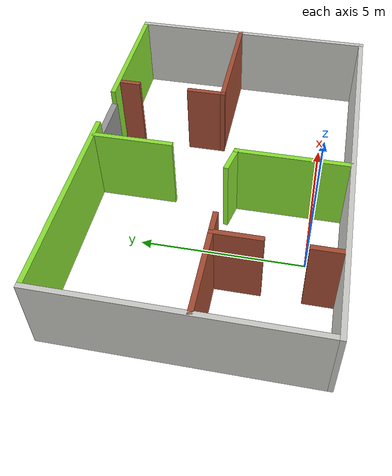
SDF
<?xml version='1.0'?>
<sdf version='1.6'>
  <model name='new_home'>
    <pose frame=''>2.21837 2.935 0 0 -0 0</pose>
    <link name='Door_1'>
      <collision name='Door_1_Collision'>
        <geometry>
          <box>
            <size>1.4852 0.2 2</size>
          </box>
        </geometry>
        <pose frame=''>0 0 1 0 -0 0</pose>
      </collision>
      <visual name='Door_1_Visual'>
        <pose frame=''>0 0 1 0 -0 0</pose>
        <geometry>
          <box>
            <size>1.4852 0.2 2</size>
          </box>
        </geometry>
        <material>
          <script>
            <uri>file://media/materials/scripts/gazebo.material</uri>
            <name>Gazebo/Grey</name>
          </script>
        </material>
      </visual>
      <pose frame=''>1.00458 3.92529 0 0 -0 0</pose>
    </link>
    <link name='Wall_0'>
      <collision name='Wall_0_Collision'>
        <geometry>
          <box>
            <size>8 0.15 2.5</size>
          </box>
        </geometry>
        <pose frame=''>0 0 1.25 0 -0 0</pose>
      </collision>
      <visual name='Wall_0_Visual'>
        <pose frame=''>0 0 1.25 0 -0 0</pose>
        <geometry>
          <box>
            <size>8 0.15 2.5</size>
          </box>
        </geometry>
        <material>
          <script>
            <uri>file://media/materials/scripts/gazebo.material</uri>
            <name>Gazebo/CeilingTiled</name>
          </script>
          <ambient>0.541176 0.886275 0.203922 1</ambient>
        </material>
        <meta>
          <layer>0</layer>
        </meta>
      </visual>
      <pose frame=''>-5.92837 0 0 0 -0 1.5708</pose>
    </link>
    <link name='Wall_14'>
      <collision name='Wall_14_Collision'>
        <geometry>
          <box>
            <size>3.75 0.15 2.5</size>
          </box>
        </geometry>
        <pose frame=''>0 0 1.25 0 -0 0</pose>
      </collision>
      <visual name='Wall_14_Visual'>
        <pose frame=''>0 0 1.25 0 -0 0</pose>
        <geometry>
          <box>
            <size>3.75 0.15 2.5</size>
          </box>
        </geometry>
        <material>
          <script>
            <uri>file://media/materials/scripts/gazebo.material</uri>
            <name>Gazebo/Bricks</name>
          </script>
          <ambient>1 1 1 1</ambient>
        </material>
        <meta>
          <layer>0</layer>
        </meta>
      </visual>
      <pose frame=''>4.12837 0.395188 0 0 -0 3.14159</pose>
    </link>
    <link name='Wall_15'>
      <collision name='Wall_15_Collision'>
        <geometry>
          <box>
            <size>1.25 0.15 2.5</size>
          </box>
        </geometry>
        <pose frame=''>0 0 1.25 0 -0 0</pose>
      </collision>
      <visual name='Wall_15_Visual'>
        <pose frame=''>0 0 1.25 0 -0 0</pose>
        <geometry>
          <box>
            <size>1.25 0.15 2.5</size>
          </box>
        </geometry>
        <material>
          <script>
            <uri>file://media/materials/scripts/gazebo.material</uri>
            <name>Gazebo/Bricks</name>
          </script>
          <ambient>1 1 1 1</ambient>
        </material>
        <meta>
          <layer>0</layer>
        </meta>
      </visual>
      <pose frame=''>2.32837 0.945188 0 0 -0 1.5708</pose>
    </link>
    <link name='Wall_17'>
      <collision name='Wall_17_Collision'>
        <geometry>
          <box>
            <size>2.5 0.15 2.5</size>
          </box>
        </geometry>
        <pose frame=''>0 0 1.25 0 -0 0</pose>
      </collision>
      <visual name='Wall_17_Visual'>
        <pose frame=''>0 0 1.25 0 -0 0</pose>
        <geometry>
          <box>
            <size>2.5 0.15 2.5</size>
          </box>
        </geometry>
        <material>
          <script>
            <uri>file://media/materials/scripts/gazebo.material</uri>
            <name>Gazebo/Grey</name>
          </script>
          <ambient>0.541176 0.886275 0.203922 1</ambient>
        </material>
        <meta>
          <layer>0</layer>
        </meta>
      </visual>
      <pose frame=''>-0.326947 2.67972 0 0 -0 -1.5708</pose>
    </link>
    <link name='Wall_19'>
      <collision name='Wall_19_Collision'>
        <geometry>
          <box>
            <size>3.5 0.15 2.5</size>
          </box>
        </geometry>
        <pose frame=''>0 0 1.25 0 -0 0</pose>
      </collision>
      <visual name='Wall_19_Visual'>
        <pose frame=''>0 0 1.25 0 -0 0</pose>
        <geometry>
          <box>
            <size>3.5 0.15 2.5</size>
          </box>
        </geometry>
        <material>
          <script>
            <uri>file://media/materials/scripts/gazebo.material</uri>
            <name>Gazebo/Grey</name>
          </script>
          <ambient>0.541176 0.886275 0.203922 1</ambient>
        </material>
        <meta>
          <layer>0</layer>
        </meta>
      </visual>
      <pose frame=''>-0.246493 -2.16481 0 0 -0 -1.5708</pose>
    </link>
    <link name='Wall_2'>
      <collision name='Wall_2_Collision'>
        <geometry>
          <box>
            <size>8 0.15 2.5</size>
          </box>
        </geometry>
        <pose frame=''>0 0 1.25 0 -0 0</pose>
      </collision>
      <visual name='Wall_2_Visual'>
        <pose frame=''>0 0 1.25 0 -0 0</pose>
        <geometry>
          <box>
            <size>8 0.15 2.5</size>
          </box>
        </geometry>
        <material>
          <script>
            <uri>file://media/materials/scripts/gazebo.material</uri>
            <name>Gazebo/CeilingTiled</name>
          </script>
          <ambient>0.541176 0.886275 0.203922 1</ambient>
        </material>
        <meta>
          <layer>0</layer>
        </meta>
      </visual>
      <pose frame=''>5.92163 0 0 0 -0 -1.5708</pose>
    </link>
    <link name='Wall_21'>
      <collision name='Wall_21_Collision'>
        <geometry>
          <box>
            <size>3.25 0.15 2.5</size>
          </box>
        </geometry>
        <pose frame=''>0 0 1.25 0 -0 0</pose>
      </collision>
      <visual name='Wall_21_Visual'>
        <pose frame=''>0 0 1.25 0 -0 0</pose>
        <geometry>
          <box>
            <size>3.25 0.15 2.5</size>
          </box>
        </geometry>
        <material>
          <script>
            <uri>file://media/materials/scripts/gazebo.material</uri>
            <name>Gazebo/Bricks</name>
          </script>
          <ambient>1 1 1 1</ambient>
        </material>
        <meta>
          <layer>0</layer>
        </meta>
      </visual>
      <pose frame=''>-4.34841 -0.349015 0 0 -0 0</pose>
    </link>
    <link name='Wall_23'>
      <collision name='Wall_23_Collision'>
        <geometry>
          <box>
            <size>0.891752 0.15 2.5</size>
          </box>
        </geometry>
        <pose frame=''>0 0 1.25 0 -0 0</pose>
      </collision>
      <visual name='Wall_23_Visual'>
        <pose frame=''>0 0 1.25 0 -0 0</pose>
        <geometry>
          <box>
            <size>0.891752 0.15 2.5</size>
          </box>
        </geometry>
        <material>
          <script>
            <uri>file://media/materials/scripts/gazebo.material</uri>
            <name>Gazebo/Grey</name>
          </script>
          <ambient>0.541176 0.886275 0.203922 1</ambient>
        </material>
        <meta>
          <layer>0</layer>
        </meta>
      </visual>
      <pose frame=''>-0.608537 -0.409355 0 0 -0 -0.218669</pose>
    </link>
    <link name='Wall_26'>
      <collision name='Wall_26_Collision'>
        <geometry>
          <box>
            <size>1.5 0.15 2.5</size>
          </box>
        </geometry>
        <pose frame=''>0 0 1.25 0 -0 0</pose>
      </collision>
      <visual name='Wall_26_Visual'>
        <pose frame=''>0 0 1.25 0 -0 0</pose>
        <geometry>
          <box>
            <size>1.5 0.15 2.5</size>
          </box>
        </geometry>
        <material>
          <script>
            <uri>file://media/materials/scripts/gazebo.material</uri>
            <name>Gazebo/Bricks</name>
          </script>
          <ambient>1 1 1 1</ambient>
        </material>
        <meta>
          <layer>0</layer>
        </meta>
      </visual>
      <pose frame=''>-3.40432 -1.02401 0 0 -0 -1.5708</pose>
    </link>
    <link name='Wall_3'>
      <collision name='Wall_3_Collision'>
        <geometry>
          <box>
            <size>12 0.15 2.5</size>
          </box>
        </geometry>
        <pose frame=''>0 0 1.25 0 -0 0</pose>
      </collision>
      <visual name='Wall_3_Visual'>
        <pose frame=''>0 0 1.25 0 -0 0</pose>
        <geometry>
          <box>
            <size>12 0.15 2.5</size>
          </box>
        </geometry>
        <material>
          <script>
            <uri>file://media/materials/scripts/gazebo.material</uri>
            <name>Gazebo/CeilingTiled</name>
          </script>
          <ambient>0.541176 0.886275 0.203922 1</ambient>
        </material>
        <meta>
          <layer>0</layer>
        </meta>
      </visual>
      <pose frame=''>-0.003374 -3.925 0 0 -0 3.14159</pose>
    </link>
    <link name='Wall_30'>
      <collision name='Wall_30_Collision'>
        <geometry>
          <box>
            <size>1 0.15 2.5</size>
          </box>
        </geometry>
        <pose frame=''>0 0 1.25 0 -0 0</pose>
      </collision>
      <visual name='Wall_30_Visual'>
        <pose frame=''>0 0 1.25 0 -0 0</pose>
        <geometry>
          <box>
            <size>1 0.15 2.5</size>
          </box>
        </geometry>
        <material>
          <script>
            <uri>file://media/materials/scripts/gazebo.material</uri>
            <name>Gazebo/Bricks</name>
          </script>
          <ambient>1 1 1 1</ambient>
        </material>
        <meta>
          <layer>0</layer>
        </meta>
      </visual>
      <pose frame=''>-3.44455 -3.44389 0 0 -0 1.5708</pose>
    </link>
    <link name='Wall_32'>
      <collision name='Wall_32_Collision'>
        <geometry>
          <box>
            <size>6.25 0.15 2.5</size>
          </box>
        </geometry>
        <pose frame=''>0 0 1.25 0 -0 0</pose>
      </collision>
      <visual name='Wall_32_Visual'>
        <pose frame=''>0 0 1.25 0 -0 0</pose>
        <geometry>
          <box>
            <size>6.25 0.15 2.5</size>
          </box>
        </geometry>
        <material>
          <script>
            <uri>file://media/materials/scripts/gazebo.material</uri>
            <name>Gazebo/Grey</name>
          </script>
          <ambient>0.541176 0.886275 0.203922 1</ambient>
        </material>
        <meta>
          <layer>0</layer>
        </meta>
      </visual>
      <pose frame=''>-2.87837 3.925 0 0 -0 0</pose>
    </link>
    <link name='Wall_36'>
      <collision name='Wall_36_Collision'>
        <geometry>
          <box>
            <size>4.25 0.15 2.5</size>
          </box>
        </geometry>
        <pose frame=''>0 0 1.25 0 -0 0</pose>
      </collision>
      <visual name='Wall_36_Visual'>
        <pose frame=''>0 0 1.25 0 -0 0</pose>
        <geometry>
          <box>
            <size>4.25 0.15 2.5</size>
          </box>
        </geometry>
        <material>
          <script>
            <uri>file://media/materials/scripts/gazebo.material</uri>
            <name>Gazebo/Grey</name>
          </script>
          <ambient>0.541176 0.886275 0.203922 1</ambient>
        </material>
        <meta>
          <layer>0</layer>
        </meta>
      </visual>
      <pose frame=''>3.87163 3.925 0 0 -0 3.14159</pose>
    </link>
    <link name='Wall_8'>
      <collision name='Wall_8_Collision'>
        <geometry>
          <box>
            <size>0.75 0.15 2.5</size>
          </box>
        </geometry>
        <pose frame=''>0 0 1.25 0 -0 0</pose>
      </collision>
      <visual name='Wall_8_Visual'>
        <pose frame=''>0 0 1.25 0 -0 0</pose>
        <geometry>
          <box>
            <size>0.75 0.15 2.5</size>
          </box>
        </geometry>
        <material>
          <script>
            <uri>file://media/materials/scripts/gazebo.material</uri>
            <name>Gazebo/Bricks</name>
          </script>
          <ambient>1 1 1 1</ambient>
        </material>
        <meta>
          <layer>0</layer>
        </meta>
      </visual>
      <pose frame=''>2.34816 3.55472 0 0 -0 -1.5708</pose>
    </link>
    <static>1</static>
  </model>
</sdf>
